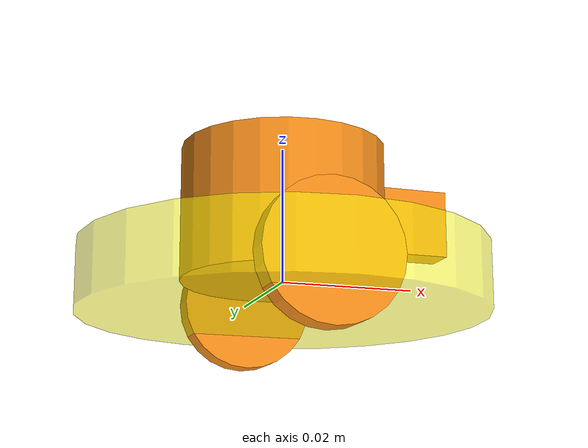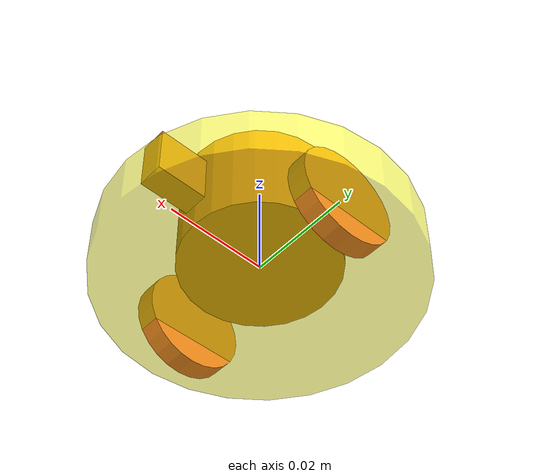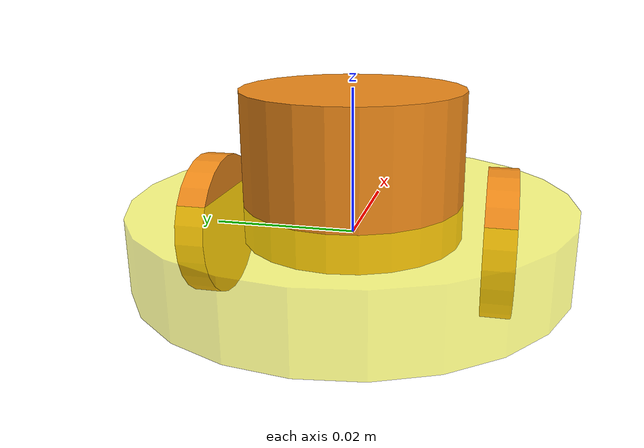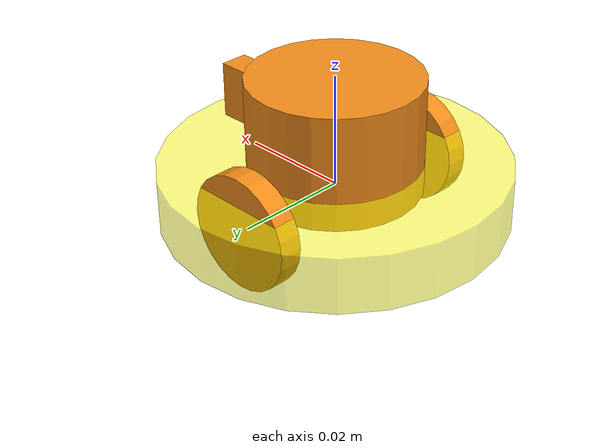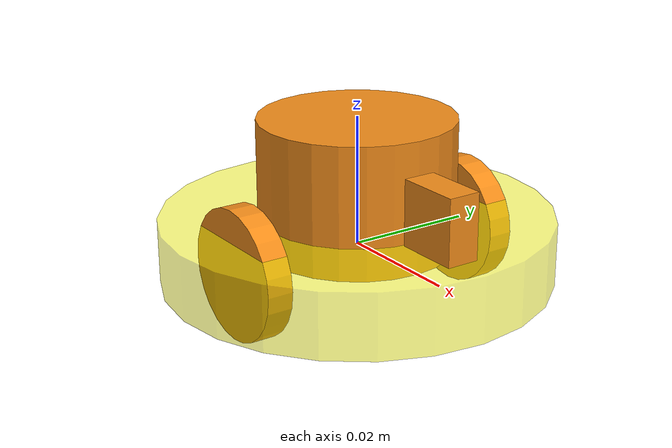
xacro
<?xml version="1.0"?>
<robot name="rob2w" xmlns:xacro="https://www.ros.org/wiki/xacro" >

  <material name="black">
    <color rgba="0.0 0.0 0.0 1.0"/>
  </material>
  <material name="blue">
    <color rgba="0.0 0.0 0.58515625 0.5"/>
  </material>
  <material name="green">
    <color rgba="0.0 0.8 0.0 1.0"/>
  </material>
  <material name="yellow">
    <color rgba="1.0 1.0 0.0 0.5"/>
  </material>
  <material name="grey">
    <color rgba="0.2 0.2 0.2 1.0"/>
  </material>
  <material name="orange">
    <color rgba="1.0 0.423529411765 0.0392156862745 1.0"/>
  </material>
  <material name="brown">
    <color rgba="0.870588235294 0.811764705882 0.764705882353 1.0"/>
  </material>
  <material name="red">
    <color rgba="0.80078125 0.12890625 0.1328125 1.0"/>
  </material>
  <material name="white">
    <color rgba="1.0 1.0 1.0 1.0"/>
  </material>

  <gazebo reference="base_link_rob2w">
    <material>Gazebo/Orange</material>
  </gazebo>
  <gazebo reference="link_left_wheel">
    <material>Gazebo/Blue</material>
  </gazebo>
  <gazebo reference="link_right_wheel">
    <material>Gazebo/Blue</material>
  </gazebo>

  <link name="base_link_rob2w">
    <!-- pose and inertial -->
    <pose>0 0 0.1 0 0 0</pose>
    <inertial>
      <mass value="0.5"/>
      <origin rpy="0 0 0" xyz="0 0 0.1"/>
      <inertia ixx="0.0395416666667" ixy="0" ixz="0" iyy="0.106208333333" iyz="0" izz="0.106208333333"/>
    </inertial>

    <collision name="collision_chassis">
      <geometry>
        <cylinder length="0.01" radius= "0.03" />
      </geometry>
    </collision>

    <visual>
      <origin rpy="0 0 0" xyz="0 0 0"/>
      <geometry>
        <cylinder length="0.01" radius= "0.03" />
      </geometry>
      <material name="yellow"/>
    </visual>

        <!-- caster front -->
    <collision name="caster_front_collision">
      <origin rpy=" 0 0 0" xyz="0.0 0 0.01"/>
      <geometry>
        <cylinder length = "0.02" radius = "0.02" />
      </geometry>
    </collision>
    <visual name="caster_front_visual">
      <origin rpy=" 0 0 0" xyz="0.0 0 0.01"/>
      <geometry>
        <cylinder length = "0.02" radius = "0.015" />
      </geometry>
      <color rgba="0.0 0.0 0.58515625 0.5"/>
    </visual>

  <!-- Create wheel right -->

    <visual name="link_right_wheel_visual">
      <origin rpy="0 1.5707 1.5707" xyz="0 0.02 0"/>
      <geometry>
        <cylinder length="0.004" radius="0.01"/>
      </geometry>
      <color rgba="0.80078125 0.12890625 0.1328125 1.0"/>
    </visual>

    <visual name="link_left_wheel_visual">
      <origin rpy="0 1.5707 1.5707" xyz="0 -0.02 0"/>
      <geometry>
        <cylinder length="0.004" radius="0.01"/>
      </geometry>
      <color rgba="0.80078125 0.12890625 0.1328125 1.0"/>
    </visual>

    <visual name="arrow_visual">
      <origin rpy="0 1.5707 1.5707" xyz="0.02 0 0.01"/>
      <geometry>
        <box size="0.01 0.01 0.005"/>
      </geometry>
      <color rgba="0.0 0.8 0.0 1.0"/>
    </visual>

  </link>

</robot>
